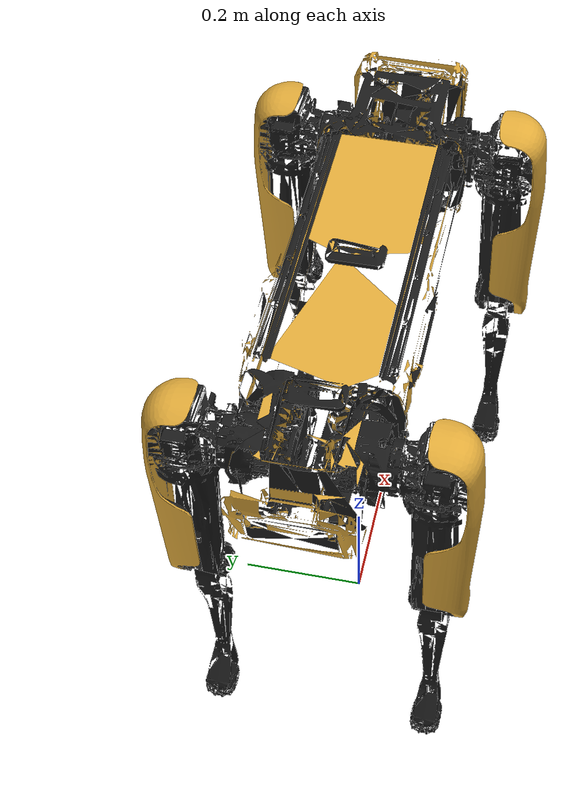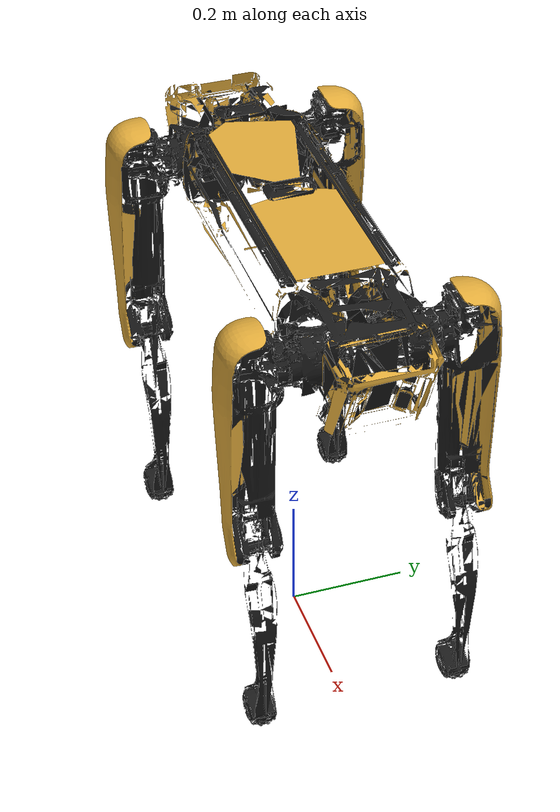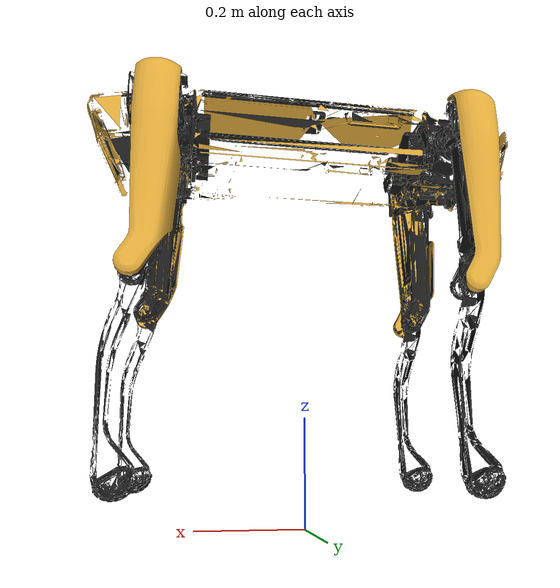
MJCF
<mujoco model="spot">
  <compiler angle="radian" meshdir="assets" autolimits="true"/>

  <option integrator="implicitfast" cone="elliptic" impratio="100"/>

  <visual>
    <global ellipsoidinertia="true"/>
  </visual>

  <default>
    <default class="spot">
      <geom friction="0.4" margin="0.001" condim="1" solref="0.004 1"/>
      <joint damping="0.1" armature="0.01" frictionloss="0.2" actuatorfrcrange="-1000 1000"/>
      <position kp="500" kv="40" inheritrange="1"/>
      <default class="visual">
        <geom type="mesh" contype="0" conaffinity="0" group="1" density="0"/>
      </default>
      <default class="collision">
        <geom group="3"/>
        <default class="foot">
          <geom type="sphere" size="0.036" pos="0 0 -0.3365" priority="1" condim="6"
            solimp="0.015 1 0.036" friction="0.8 0.02 0.01"/>
        </default>
      </default>
    </default>
  </default>

  <asset>
    <material name="BlackAbs" rgba="0.1 0.1 0.1 1"/>
    <material name="wrap"     rgba="0.878431 0.666666 0.227450 1"/>

    <mesh file="body_0.obj"/>
    <mesh file="body_1.obj"/>
    <mesh file="front_left_hip.obj"/>
    <mesh file="front_left_upper_leg_0.obj"/>
    <mesh file="front_left_upper_leg_1.obj"/>
    <mesh file="front_left_lower_leg.obj"/>
    <mesh file="front_right_hip.obj"/>
    <mesh file="front_right_upper_leg_0.obj"/>
    <mesh file="front_right_upper_leg_1.obj"/>
    <mesh file="front_right_lower_leg.obj"/>
    <mesh file="rear_left_hip.obj"/>
    <mesh file="rear_left_upper_leg_0.obj"/>
    <mesh file="rear_left_upper_leg_1.obj"/>
    <mesh file="rear_left_lower_leg.obj"/>
    <mesh file="rear_right_hip.obj"/>
    <mesh file="rear_right_upper_leg_0.obj"/>
    <mesh file="rear_right_upper_leg_1.obj"/>
    <mesh file="rear_right_lower_leg.obj"/>
    <mesh file="body_collision.obj"/>
    <mesh file="left_upper_leg_collision.obj"/>
    <mesh file="left_lower_leg_collision.obj"/>
    <mesh file="right_upper_leg_collision.obj"/>
    <mesh file="right_lower_leg_collision.obj"/>
  </asset>

  <worldbody>
    <light name="spotlight" mode="targetbodycom" target="body" pos="3 0 4" cutoff="30"/>

    <body name="body" childclass="spot" pos="0 0 0.75">
      <light name="tracking" mode="trackcom" pos="0 0 2"/>
      <freejoint name="freejoint"/>
      <inertial pos="0.0063944 -9.81216e-05 0.000911379"
        mass="32.86"
        diaginertia="0.13144 0.13144 0.13144"/>

      <!-- Body visual geoms -->
      <geom mesh="body_0" material="BlackAbs" class="visual"/>
      <geom mesh="body_1" material="wrap"     class="visual"/>
      <!-- Body collision geom -->
      <geom mesh="body_collision" class="collision"/>

      <!-- ======================== FRONT LEFT ======================== -->
      <body name="fl_hip" pos="0.29785 0.055 0">
        <inertial pos="-0.00537435 0.0128418 9.87523e-05"
          quat="0.707107 0.707107 -0.707107 0.707107"
          mass="1.68"
          diaginertia="0.00226544 0.00211474 0.00181296"/>
        <joint name="fl_hx" type="hinge" axis="1 0 0"
          range="-0.785398 0.785398" limited="true"
          stiffness="500" damping="40" armature="0.01" frictionloss="0.2"/>
        <geom material="BlackAbs" mesh="front_left_hip" class="visual"/>
        <!-- hip collision: small box around the hip motor housing -->
        <geom size="0.06 0.03 0.04" pos="0 0.05 0" type="box" class="collision"/>

        <body name="fl_uleg" pos="0 0.1108 0">
          <inertial pos="0.00514237 -0.00243237 -0.121009"
            mass="2.34"
            diaginertia="0.0275596 0.0273549 0.00284815"/>
          <joint name="fl_hy" type="hinge" axis="0 1 0"
            range="-0.898845 2.29511" limited="true"
            stiffness="500" damping="40" armature="0.01" frictionloss="0.2"/>
          <geom mesh="front_left_upper_leg_0" material="wrap"     class="visual"/>
          <geom mesh="front_left_upper_leg_1" material="BlackAbs" class="visual"/>
          <geom mesh="left_upper_leg_collision" class="collision"/>

          <body name="fl_lleg" pos="0.025 0 -0.32">
            <inertial pos="0.00225794 4.6076e-05 -0.180082"
              quat="0.707107 0 0 0.707107"
              mass="0.35"
              diaginertia="0.00405032 0.00399902 0.00014934"/>
            <joint name="fl_kn" type="hinge" axis="0 1 0"
              range="-2.7929 -0.254402" limited="true"
              stiffness="500" damping="40" armature="0.01" frictionloss="0.2"/>
            <geom material="BlackAbs" mesh="front_left_lower_leg" class="visual"/>
            <geom mesh="left_lower_leg_collision" class="collision"/>
            <geom name="FL" class="foot"/>
          </body>
        </body>
      </body>

      <!-- ======================== FRONT RIGHT ======================== -->
      <body name="fr_hip" pos="0.29785 -0.055 0">
        <inertial pos="-0.00537435 -0.0128418 -9.87523e-05"
          quat="0.707107 0.707107 -0.707107 0.707107"
          mass="1.68"
          diaginertia="0.00226544 0.00211474 0.00181296"/>
        <joint name="fr_hx" type="hinge" axis="1 0 0"
          range="-0.785398 0.785398" limited="true"
          stiffness="500" damping="40" armature="0.01" frictionloss="0.2"/>
        <geom material="BlackAbs" mesh="front_right_hip" class="visual"/>
        <geom size="0.06 0.03 0.04" pos="0 -0.05 0" type="box" class="collision"/>

        <body name="fr_uleg" pos="0 -0.1108 0">
          <inertial pos="0.00514237 0.00243237 -0.121009"
            mass="2.34"
            diaginertia="0.0275596 0.0273549 0.00284815"/>
          <joint name="fr_hy" type="hinge" axis="0 1 0"
            range="-0.898845 2.24363" limited="true"
            stiffness="500" damping="40" armature="0.01" frictionloss="0.2"/>
          <geom mesh="front_right_upper_leg_0" material="wrap"     class="visual"/>
          <geom mesh="front_right_upper_leg_1" material="BlackAbs" class="visual"/>
          <geom mesh="right_upper_leg_collision" class="collision"/>

          <body name="fr_lleg" pos="0.025 0 -0.32">
            <inertial pos="0.00225794 4.6076e-05 -0.180082"
              quat="0.707107 0 0 0.707107"
              mass="0.35"
              diaginertia="0.00405032 0.00399902 0.00014934"/>
            <joint name="fr_kn" type="hinge" axis="0 1 0"
              range="-2.7929 -0.255648" limited="true"
              stiffness="500" damping="40" armature="0.01" frictionloss="0.2"/>
            <geom material="BlackAbs" mesh="front_right_lower_leg" class="visual"/>
            <geom mesh="right_lower_leg_collision" class="collision"/>
            <geom name="FR" class="foot"/>
          </body>
        </body>
      </body>

      <!-- ======================== REAR LEFT ======================== -->
      <body name="hl_hip" pos="-0.29785 0.055 0">
        <inertial pos="0.00537435 0.0128418 -9.87523e-05"
          quat="0.707107 0.707107 -0.707107 0.707107"
          mass="1.68"
          diaginertia="0.00226544 0.00211474 0.00181296"/>
        <joint name="hl_hx" type="hinge" axis="1 0 0"
          range="-0.785398 0.785398" limited="true"
          stiffness="500" damping="40" armature="0.01" frictionloss="0.2"/>
        <geom material="BlackAbs" mesh="rear_left_hip" class="visual"/>
        <geom size="0.06 0.03 0.04" pos="0 0.05 0" type="box" class="collision"/>

        <body name="hl_uleg" pos="0 0.1108 0">
          <inertial pos="0.00514237 -0.00243237 -0.121009"
            mass="2.34"
            diaginertia="0.0275596 0.0273549 0.00284815"/>
          <joint name="hl_hy" type="hinge" axis="0 1 0"
            range="-0.898845 2.29511" limited="true"
            stiffness="500" damping="40" armature="0.01" frictionloss="0.2"/>
          <geom mesh="rear_left_upper_leg_0" material="wrap"     class="visual"/>
          <geom mesh="rear_left_upper_leg_1" material="BlackAbs" class="visual"/>
          <geom mesh="left_upper_leg_collision" class="collision"/>

          <body name="hl_lleg" pos="0.025 0 -0.32">
            <inertial pos="0.00225794 4.6076e-05 -0.180082"
              quat="0.707107 0 0 0.707107"
              mass="0.35"
              diaginertia="0.00405032 0.00399902 0.00014934"/>
            <joint name="hl_kn" type="hinge" axis="0 1 0"
              range="-2.7929 -0.247067" limited="true"
              stiffness="500" damping="40" armature="0.01" frictionloss="0.2"/>
            <geom material="BlackAbs" mesh="rear_left_lower_leg" class="visual"/>
            <geom mesh="left_lower_leg_collision" class="collision"/>
            <geom name="HL" class="foot"/>
          </body>
        </body>
      </body>

      <!-- ======================== REAR RIGHT ======================== -->
      <body name="hr_hip" pos="-0.29785 -0.055 0">
        <inertial pos="0.00537435 -0.0128418 9.87523e-05"
          quat="0.707107 0.707107 -0.707107 0.707107"
          mass="1.68"
          diaginertia="0.00226544 0.00211474 0.00181296"/>
        <joint name="hr_hx" type="hinge" axis="1 0 0"
          range="-0.785398 0.785398" limited="true"
          stiffness="500" damping="40" armature="0.01" frictionloss="0.2"/>
        <geom material="BlackAbs" mesh="rear_right_hip" class="visual"/>
        <geom size="0.06 0.03 0.04" pos="0 -0.05 0" type="box" class="collision"/>

        <body name="hr_uleg" pos="0 -0.1108 0">
          <inertial pos="0.00514237 0.00243237 -0.121009"
            mass="2.34"
            diaginertia="0.0275596 0.0273549 0.00284815"/>
          <joint name="hr_hy" type="hinge" axis="0 1 0"
            range="-0.898845 2.29511" limited="true"
            stiffness="500" damping="40" armature="0.01" frictionloss="0.2"/>
          <geom mesh="rear_right_upper_leg_0" material="wrap"     class="visual"/>
          <geom mesh="rear_right_upper_leg_1" material="BlackAbs" class="visual"/>
          <geom mesh="right_upper_leg_collision" class="collision"/>

          <body name="hr_lleg" pos="0.025 0 -0.32">
            <inertial pos="0.00225794 4.6076e-05 -0.180082"
              quat="0.707107 0 0 0.707107"
              mass="0.35"
              diaginertia="0.00405032 0.00399902 0.00014934"/>
            <joint name="hr_kn" type="hinge" axis="0 1 0"
              range="-2.7929 -0.248282" limited="true"
              stiffness="500" damping="40" armature="0.01" frictionloss="0.2"/>
            <geom material="BlackAbs" mesh="rear_left_lower_leg" class="visual"/>
            <geom mesh="right_lower_leg_collision" class="collision"/>
            <geom name="HR" class="foot"/>
          </body>
        </body>
      </body>

    </body>
  </worldbody>

  <contact>
    <exclude body1="body" body2="fl_uleg"/>
    <exclude body1="body" body2="fr_uleg"/>
    <exclude body1="body" body2="hl_uleg"/>
    <exclude body1="body" body2="hr_uleg"/>
  </contact>

  <actuator>
    <motor name="fl_hx" joint="fl_hx" gear="1" ctrlrange="-23.7 23.7"/>
    <motor name="fl_hy" joint="fl_hy" gear="1" ctrlrange="-23.7 23.7"/>
    <motor name="fl_kn" joint="fl_kn" gear="1" ctrlrange="-45.43 45.43"/>

    <motor name="fr_hx" joint="fr_hx" gear="1" ctrlrange="-23.7 23.7"/>
    <motor name="fr_hy" joint="fr_hy" gear="1" ctrlrange="-23.7 23.7"/>
    <motor name="fr_kn" joint="fr_kn" gear="1" ctrlrange="-45.43 45.43"/>

    <motor name="hl_hx" joint="hl_hx" gear="1" ctrlrange="-23.7 23.7"/>
    <motor name="hl_hy" joint="hl_hy" gear="1" ctrlrange="-23.7 23.7"/>
    <motor name="hl_kn" joint="hl_kn" gear="1" ctrlrange="-45.43 45.43"/>

    <motor name="hr_hx" joint="hr_hx" gear="1" ctrlrange="-23.7 23.7"/>
    <motor name="hr_hy" joint="hr_hy" gear="1" ctrlrange="-23.7 23.7"/>
    <motor name="hr_kn" joint="hr_kn" gear="1" ctrlrange="-45.43 45.43"/>
  </actuator>

  <keyframe>
    <key name="home"
      qpos="0 0 0.46  1 0 0 0
            0 1.04 -1.8
            0 1.04 -1.8
            0 1.04 -1.8
            0 1.04 -1.8"
      ctrl="0 1.04 -1.8
            0 1.04 -1.8
            0 1.04 -1.8
            0 1.04 -1.8"/>
  </keyframe>

</mujoco>
